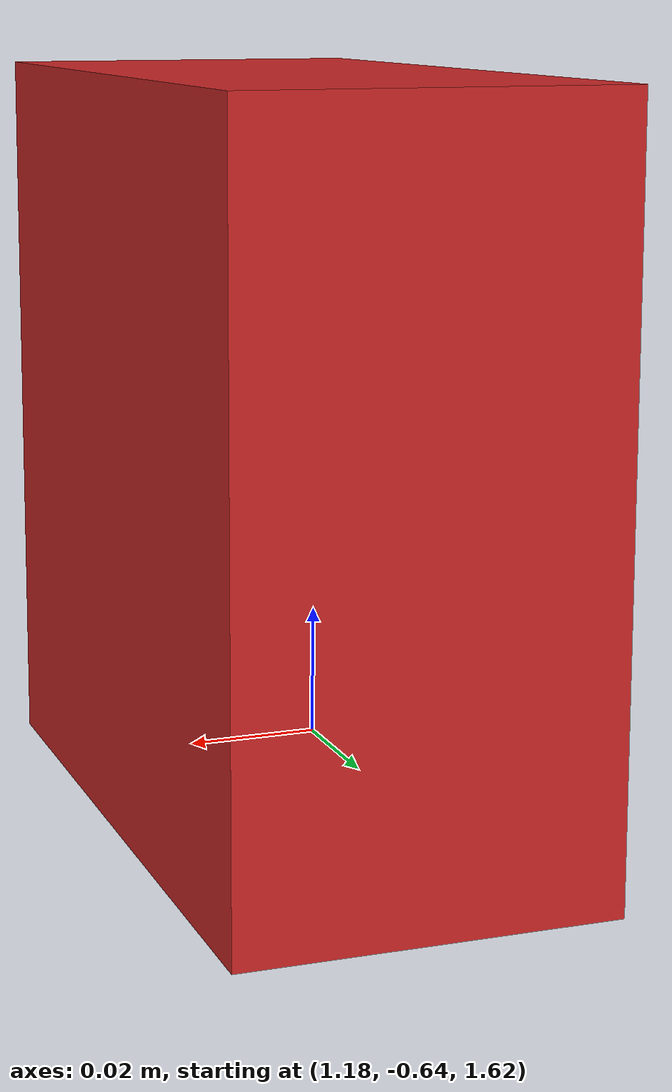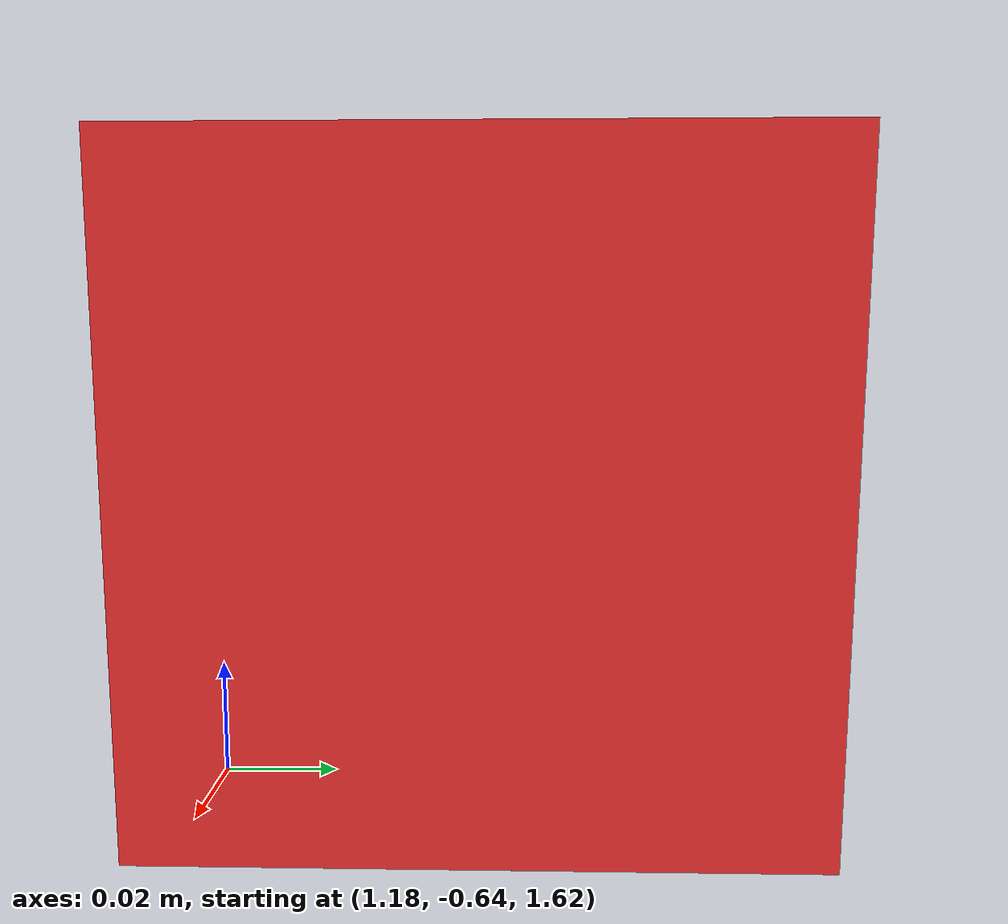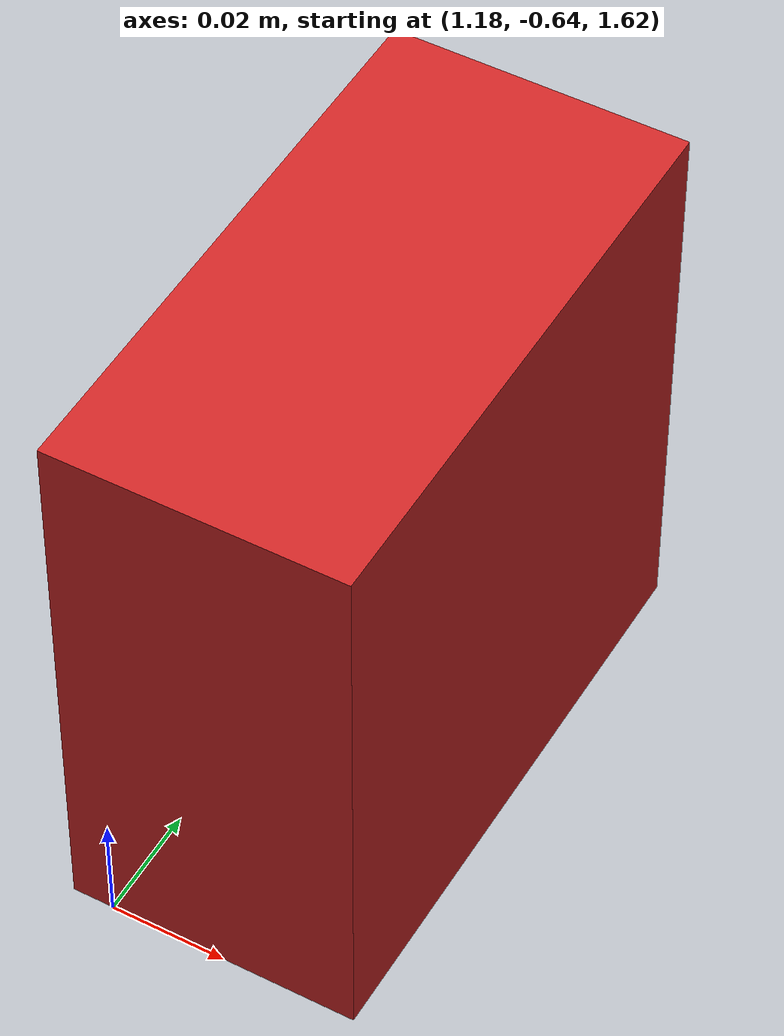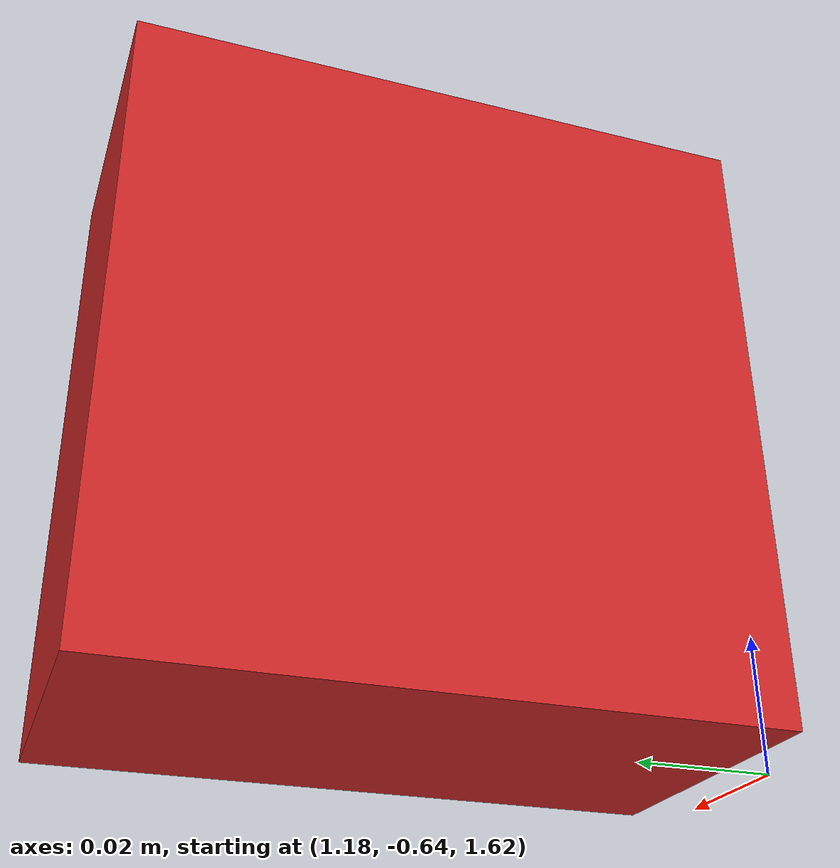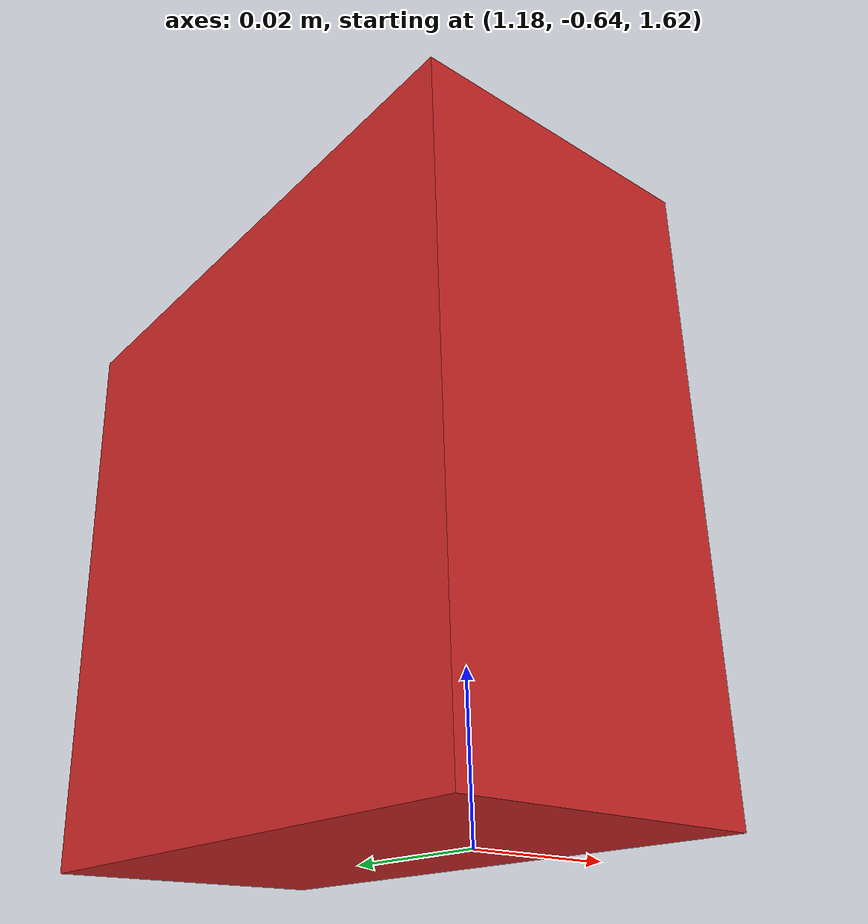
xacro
<?xml version="1.0"?>
<robot xmlns:xacro="http://ros.org/wiki/xacro"
       name="camera" >

  <!-- Include camera description (Hint: look at camera_model.urdf.xacro within the lab08_activity package) -->
  <!-- TODO: INSERT CODE HERE -->
  <xacro:include filename="$(find armee_world)/urdf/camera_model.xacro"/>

  <link name="world" />

  <!-- Link camera with world joint -->
  <!-- TODO: INSERT CODE HERE -->
  <joint name="camera_joint" type="fixed">
	<parent link="world" />
	<child link="camera_link" />
	<origin xyz="1.2 -0.593 1.675" rpy="0.0 ${pi/2} ${pi}" />

  </joint>

</robot>

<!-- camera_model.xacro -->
<robot xmlns:xacro="http://www.ros.org/wiki/xacro">

  <xacro:include filename="$(find armee_world)/urdf/camera.gazebo.xacro"/>

 <!-- Camera -->
  <link name="camera_link">
    <collision>
      <origin xyz="0 0 0" rpy="0 0 0"/>
      <geometry>
    <box size="0.1 0.1 0.05"/>
      </geometry>
    </collision>

    <visual>
      <origin xyz="0 0 0" rpy="0 0 0"/>
      <geometry>
    <box size="0.1 0.1 0.05"/>
      </geometry>
      <material name="red"/>
    </visual>

    <inertial>
      <mass value="1e-5" />
      <origin xyz="0 0 0" rpy="0 0 0"/>
      <inertia ixx="1e-6" ixy="0" ixz="0" iyy="1e-6" iyz="0" izz="1e-6" />
    </inertial>
  </link>

</robot>
